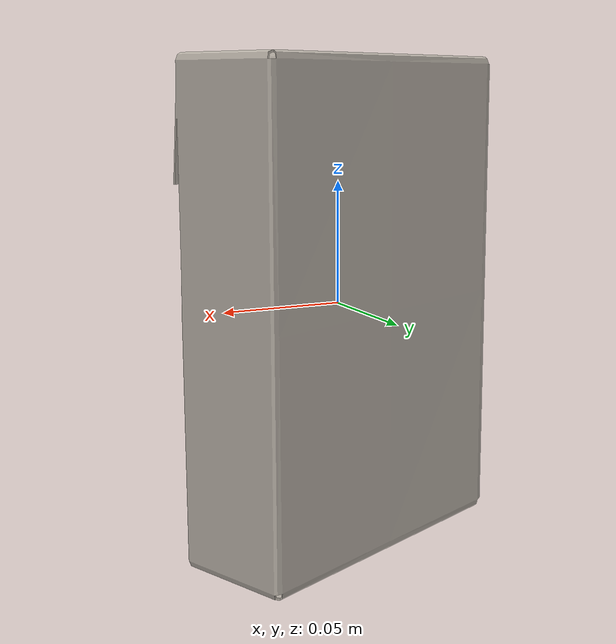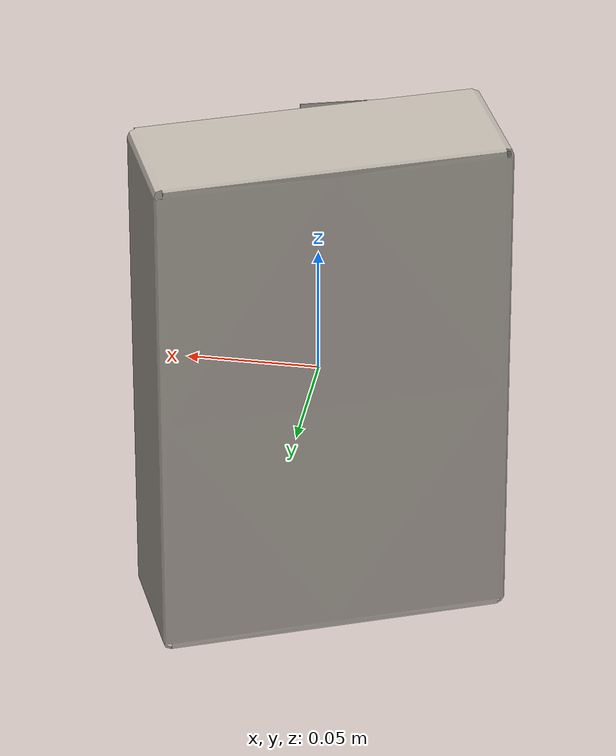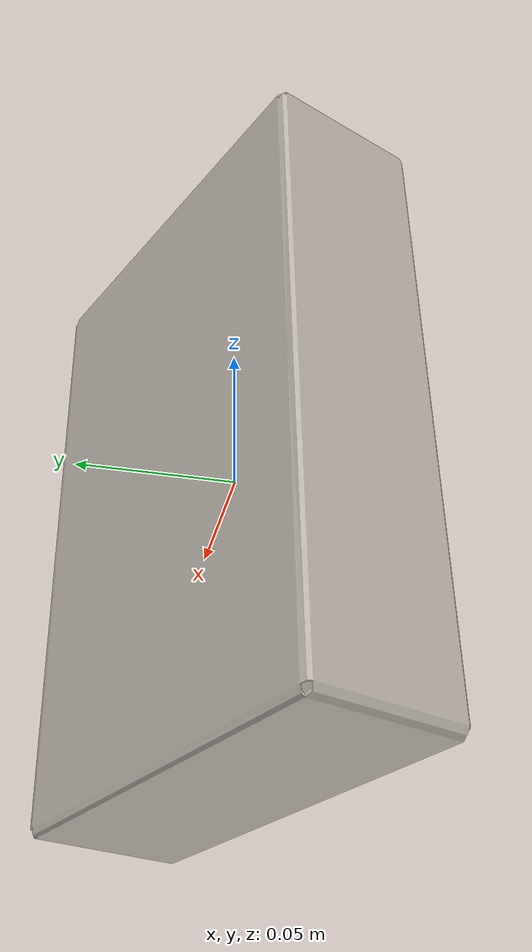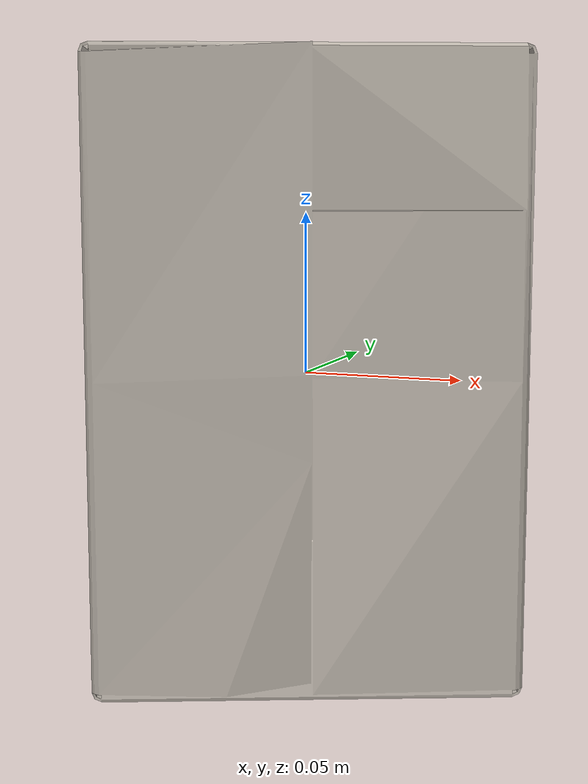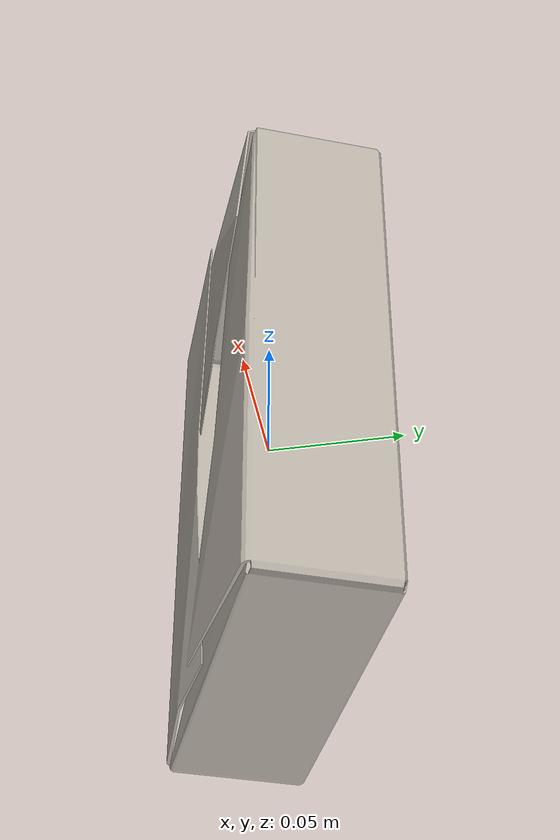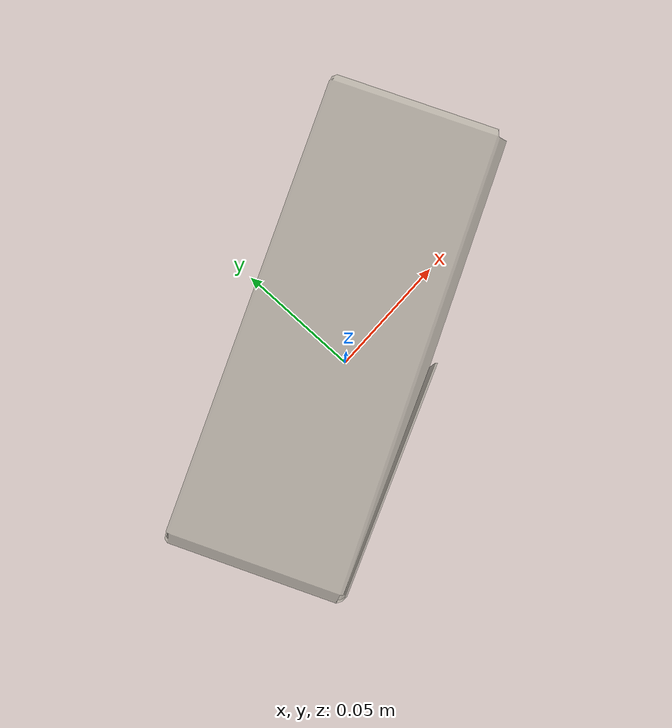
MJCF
<mujoco model="amazon package">
    <compiler angle="radian" autolimits="true" />
    <option impratio="10" />
    <default>
        <default class="visual">
            <geom contype="0" conaffinity="0" group="2" />
        </default>
        <default class="collision">
            <geom group="3" friction="0.99 0.9 0.9" priority="1" />
        </default>
    </default>
    <asset>
        <mesh file="amazon_box.obj" name="box" scale="0.1 0.1 0.1" />
        <texture type="2d" name="amazon_box_texture" file="amazon_box_texture_small.png" />
        <material name="amazon_box_material" texture="amazon_box_texture" texuniform="true"
            reflectance="0.0" />
    </asset>

    <worldbody>
        <body name="amazon package">
            <camera name="package view" pos="-0.131 0.021 0.465"
                xyaxes="-0.145 -0.989 -0.000 0.952 -0.139 0.273" />

            <geom type="mesh" euler="1.57 0.4 1.57" mesh="box" material="amazon_box_material"
                class="visual" mass="0.0" />
            <geom type="box" euler="1.57 0.4 1.57" pos="0 0.003 0.02" size="0.08 0.065 0.026"
                class="collision" mass="0.02" />
            <!-- this makes the package bottom heavy -->
            <geom type="box" euler="1.57 0.4 1.57" pos="0 0.003 -0.08" size="0.02 0.065 0.026"
                class="collision" mass="0.12" />
        </body>
    </worldbody>
</mujoco>
